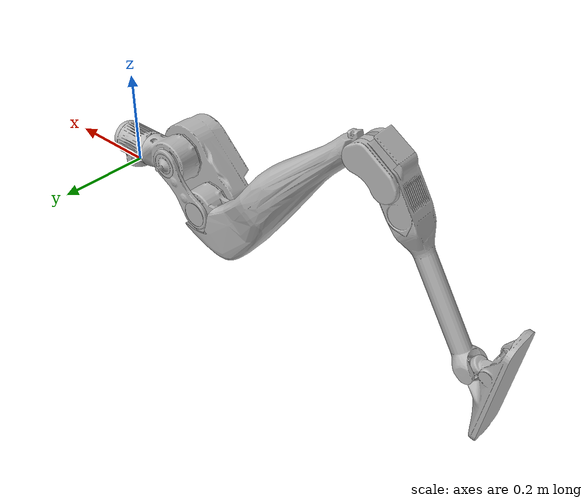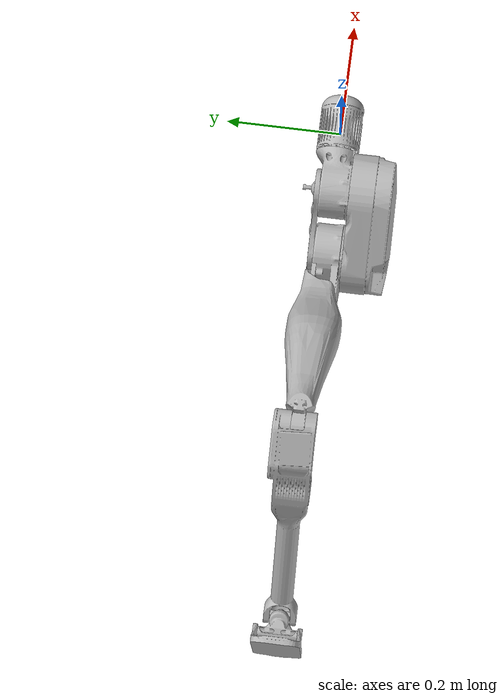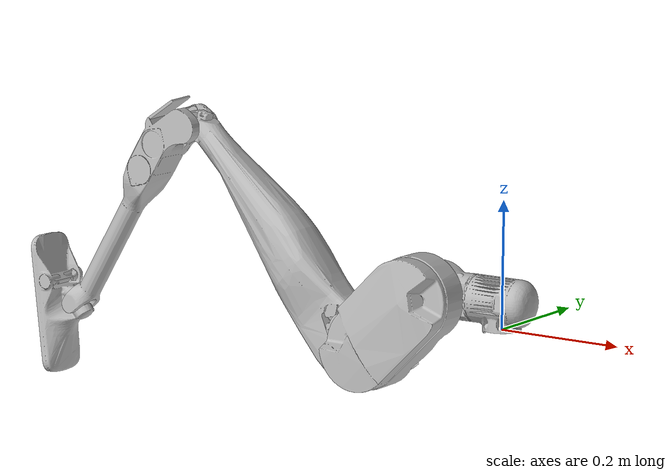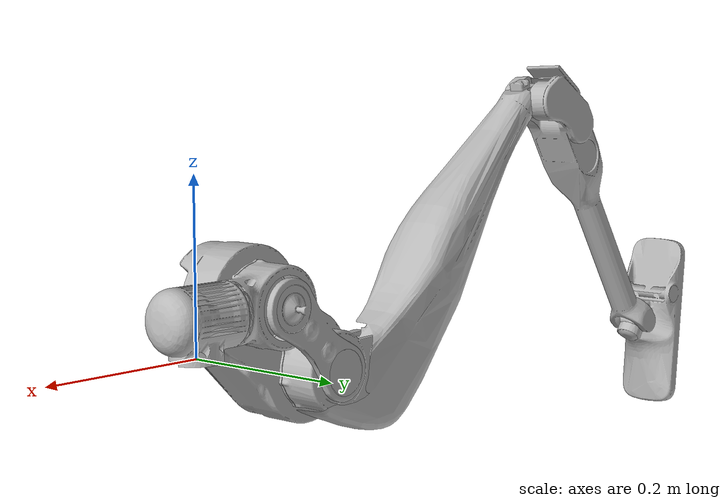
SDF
<?xml version='1.0'?>
<sdf version="1.9">
<model name="digit_right_leg">
<link name="right_hip_roll">
    <pose>0 0 0 0 0 0</pose>
    <inertial>
        <pose>-0.001967 -0.000244 0.031435 0 0 0</pose>
        <mass>0.915088</mass>
        <inertia>
        <ixx>0.001017</ixx>
        <iyy>0.001148</iyy>
        <izz>0.000766</izz>
        <ixy>3e-06</ixy>
        <ixz>1.3e-05</ixz>
        <iyz>4e-06</iyz>
        </inertia>
    </inertial>
    <visual name="right_hip_roll_visual">
        <pose>0 0 0 0 0 0</pose>
        <geometry>
        <mesh>
            <uri>package://digit_sdf_model/visual/hip-yaw-housing-mirror.obj</uri>
        </mesh>
        </geometry>
    </visual>
    <collision name="right_hip_roll_collision_0000">
        <pose>0 0 0 0 0 0</pose>
        <geometry>
          <mesh>
            <uri>package://digit_sdf_model/collision/hip-yaw-housing_parts/hip-yaw-housing_convex_piece_000.obj</uri>
          </mesh>
        </geometry>
      </collision>
      <collision name="right_hip_roll_collision_0001">
        <pose>0 0 0 0 0 0</pose>
        <geometry>
          <mesh>
            <uri>package://digit_sdf_model/collision/hip-yaw-housing_parts/hip-yaw-housing_convex_piece_001.obj</uri>
          </mesh>
        </geometry>
    </collision>
</link>
<link name="right_hip_yaw">
    <pose>0 0 0 0 0 0 </pose>
    <inertial>
        <pose>1e-05 0.001945 0.042033 0 0 0</pose>
        <mass>0.818753</mass>
        <inertia>
        <ixx>0.001627</ixx>
        <iyy>0.001929</iyy>
        <izz>0.00077</izz>
        <ixy>1e-06</ixy>
        <ixz>2e-06</ixz>
        <iyz>-5.3e-05</iyz>
        </inertia>
    </inertial>
    <visual name="right_hip_yaw_visual">
        <pose relative_to="right_hip_yaw_joint">0 0 0 0 0 0</pose>
        <geometry>
        <mesh>
            <uri>package://digit_sdf_model/visual/hip-pitch-housing-mirror.obj</uri>
        </mesh>
        </geometry>
    </visual>
</link>
<link name="right_hip_pitch">
    <pose relative_to="right_hip_pitch_joint">0 0 0 0 -1.57 0</pose>
    <inertial>
        <pose>0.060537 -0.000521 -0.038857 0 0 0</pose>
        <mass>6.244279</mass>
        <inertia>
        <ixx>0.011533</ixx>
        <iyy>0.033345</iyy>
        <izz>0.033958</izz>
        <ixy>0.000171</ixy>
        <ixz>0.000148</ixz>
        <iyz>-0.000178</iyz>
        </inertia>
    </inertial>
    <visual name="right_hip_pitch_visual">
        <pose relative_to="right_hip_pitch_joint">0 0 0 0 0 0</pose>
        <geometry>
        <mesh>
            <uri>package://digit_sdf_model/visual/hip-pitch-mirror.obj</uri>
        </mesh>
        </geometry>
    </visual>
    <collision name="right_hip_pitch_collision_0000">
        <pose relative_to="right_hip_pitch_joint">0 0 0 0 0 0</pose>
        <geometry>
          <mesh>
            <uri>package://digit_sdf_model/collision/hip-pitch-mirror_parts/hip-pitch-mirror_convex_piece_000.obj</uri>
          </mesh>
        </geometry>
    </collision>
    <collision name="right_hip_pitch_collision_0001">
        <pose relative_to="right_hip_pitch_joint">0 0 0 0 0 0</pose>
        <geometry>
          <mesh>
            <uri>package://digit_sdf_model/collision/hip-pitch-mirror_parts/hip-pitch-mirror_convex_piece_001.obj</uri>
          </mesh>
        </geometry>
    </collision>
    <collision name="right_hip_pitch_collision_0002">
        <pose relative_to="right_hip_pitch_joint">0 0 0 0 0 0</pose>
        <geometry>
          <mesh>
            <uri>package://digit_sdf_model/collision/hip-pitch-mirror_parts/hip-pitch-mirror_convex_piece_002.obj</uri>
          </mesh>
        </geometry>
    </collision>
    <collision name="right_hip_pitch_collision_0003">
        <pose relative_to="right_hip_pitch_joint">0 0 0 0 0 0</pose>
        <geometry>
          <mesh>
            <uri>package://digit_sdf_model/collision/hip-pitch-mirror_parts/hip-pitch-mirror_convex_piece_003.obj</uri>
          </mesh>
        </geometry>
    </collision>
</link>
<link name="right_knee">
    <pose relative_to="right_knee_joint">0 0 0 0 -1.57 0</pose>
    <inertial>
        <pose>0.045641 -0.042154 0.001657 0 0 0</pose>
        <mass>1.227077</mass>
        <inertia>
        <ixx>0.002643</ixx>
        <iyy>0.005098</iyy>
        <izz>0.007019</izz>
        <ixy>0.001832</ixy>
        <ixz>6.6e-05</ixz>
        <iyz>-4.5e-05</iyz>
        </inertia>
    </inertial>
    <visual name="right_knee_visual">
        <pose relative_to="right_knee_joint">0 0 0 0 0 0</pose>
        <geometry>
        <mesh>
            <uri>package://digit_sdf_model/visual/knee-mirror.obj</uri>
        </mesh>
        </geometry>
    </visual>
</link>
<link name="right_shin">
    <pose relative_to="right_knee_to_shin_joint">0 0 0 0 -1.57 0</pose>
    <inertial>
        <pose>0.174265 -0.010265 0.00107 0 0 0</pose>
        <mass>0.895793</mass>
        <inertia>
        <ixx>0.001128</ixx>
        <iyy>0.022492</iyy>
        <izz>0.022793</izz>
        <ixy>-0.001098</ixy>
        <ixz>0.000196</ixz>
        <iyz>3e-06</iyz>
        </inertia>
    </inertial>
    <visual name="right_shin_visual">
        <pose relative_to="right_knee_to_shin_joint">0 0 0 0 0 0</pose>
        <geometry>
        <mesh>
            <uri>package://digit_sdf_model/visual/shin-mirror.obj</uri>
        </mesh>
        </geometry>
    </visual>
    <collision name="right_shin_geom_1">
        <pose relative_to="right_knee_to_shin_joint">0.23 0 0 0 1.5708 0</pose>
        <geometry>
            <cylinder>
                <radius>0.03</radius>
                <length>0.343</length>
            </cylinder>
        </geometry>
    </collision>
    <collision name="right_shin_geom_2">
        <pose relative_to="right_knee_to_shin_joint">0.125 -0.009 0 -1.5708 1.466 0</pose>
        <geometry>
            <cylinder>
                <radius>0.05</radius>
                <length>0.2</length>
            </cylinder>
        </geometry>
    </collision>
</link>
<link name="right_tarsus">
    <pose relative_to="right_shin_to_tarsus_joint">0 0 0 0 -1.57 0</pose>
    <inertial>
        <pose>0.100777 0.029183 0.000678 0 0 0</pose>
        <mass>1.322865</mass>
        <inertia>
        <ixx>0.000932</ixx>
        <iyy>0.016409</iyy>
        <izz>0.016501</izz>
        <ixy>-0.00061</ixy>
        <ixz>0.000102</ixz>
        <iyz>-9e-06</iyz>
        </inertia>
    </inertial>
    <visual name="right_tarsus_visual">
        <pose relative_to="right_shin_to_tarsus_joint">0 0 0 0 0 0</pose>
        <geometry>
        <mesh>
            <uri>package://digit_sdf_model/visual/tarsus-mirror.obj</uri>
        </mesh>
        </geometry>
    </visual>
    <collision name="right_tarsus_collision_000">
        <pose relative_to="right_shin_to_tarsus_joint">0 0 0 3.14 0 0</pose>
        <geometry>
          <mesh>
            <uri>package://digit_sdf_model/collision/tarsus_parts/tarsus_convex_piece_000.obj</uri>
          </mesh>
        </geometry>
    </collision>
    <collision name="right_tarsus_collison_001">
        <pose relative_to="right_shin_to_tarsus_joint">0 0 0 3.14 0 0</pose>
        <geometry>
          <mesh>
            <uri>package://digit_sdf_model/collision/tarsus_parts/tarsus_convex_piece_001.obj</uri>
          </mesh>
        </geometry>
    </collision>
    <collision name="right_tarsus_collision_002">
        <pose relative_to="right_shin_to_tarsus_joint">0 0 0 3.14 0 0</pose>
        <geometry>
          <mesh>
            <uri>package://digit_sdf_model/collision/tarsus_parts/tarsus_convex_piece_002.obj</uri>
          </mesh>
        </geometry>
    </collision>
    <collision name="right_tarsus_collision_003">
        <pose relative_to="right_shin_to_tarsus_joint">0 0 0 3.14 0 0</pose>
        <geometry>
          <mesh>
            <uri>package://digit_sdf_model/collision/tarsus_parts/tarsus_convex_piece_003.obj</uri>
          </mesh>
        </geometry>
    </collision>
</link>
<link name="right_toe_pitch">
    <pose relative_to="right_toe_pitch_joint">0 0 0 0 -1.57 0</pose>
    <inertial>
        <pose>-0.000141 -2e-06 3e-06 0 0 0</pose>
        <mass>0.043881</mass>
        <inertia>
        <ixx>5e-06</ixx>
        <iyy>8e-06</iyy>
        <izz>4e-06</izz>
        <ixy>0</ixy>
        <ixz>0</ixz>
        <iyz>0</iyz>
        </inertia>
    </inertial>
    <visual name="right_toe_pitch_visual">
        <pose relative_to="right_toe_pitch_joint">0 0 0 0 0 0</pose>
        <geometry>
        <mesh>
            <uri>package://digit_sdf_model/visual/toe-pitch-mirror.obj</uri>
        </mesh>
        </geometry>
    </visual>
</link>
<link name="right_toe_roll">
    <pose relative_to="right_toe_roll_joint">0 0 0 0 -1.57 0</pose>
    <inertial>
        <pose>9e-06 0.028084 -0.023204 0 0 0</pose>
        <mass>0.531283</mass>
        <inertia>
        <ixx>0.00187</ixx>
        <iyy>0.001616</iyy>
        <izz>0.000843</izz>
        <ixy>0</ixy>
        <ixz>0</ixz>
        <iyz>-0.000566</iyz>
        </inertia>
    </inertial>
    <visual name="right_toe_roll_visual">
        <pose relative_to="right_toe_roll_joint">0 0 0 0 0 0</pose>
        <geometry>
        <mesh>
            <uri>package://digit_sdf_model/visual/toe-roll-mirror.obj</uri>
        </mesh>
        </geometry>
    </visual>
    <collision name="right_toe_geom_1">
        <pose relative_to="right_toe_roll_joint">0 0.0437 -0.0255 1.0472 0 0</pose>
        <geometry>
            <box>
                <size>0.08 0.235 0.023</size>
            </box>
        </geometry>
    </collision>
</link>
<joint name="right_hip_yaw_joint" type="continuous">
    <pose>-0.0505 0 0.044 0 -1.57 0</pose>
    <axis>
        <xyz>0 0 1</xyz>
        <limit>
            <lower>-0.698132</lower>
            <upper>0.698132</upper>
            <effort>1.4</effort>
            <velocity>10</velocity>
        </limit>
    </axis>
    <parent>right_hip_roll</parent>
    <child>right_hip_yaw</child>
</joint>
<joint name="right_hip_pitch_joint" type="continuous">
    <pose relative_to="right_hip_yaw_joint">0 -0.004 0.068 1.57079632679 -0.785398163397 -3.14159265359</pose>
    <axis>
        <xyz>0 0 -1</xyz>
        <limit>
            <lower>-1.0472</lower>
            <upper>1.5708</upper>
            <effort>12.5</effort>
            <velocity>10</velocity>
        </limit>
    </axis>
    <parent>right_hip_yaw</parent>
    <child>right_hip_pitch</child>
</joint>
<joint name="right_knee_joint" type="continuous">
    <pose relative_to="right_hip_pitch_joint">0.12 0 0.0045 0 0 1.57079632679</pose>
    <axis>
        <xyz>0 0 1</xyz>
        <limit>
            <lower>-1.39626</lower>
            <upper>1.019272</upper>
            <effort>1.4</effort>
            <velocity>10</velocity>
        </limit>
    </axis>
    <parent>right_hip_pitch</parent>
    <child>right_knee</child>
</joint>
<joint name="right_knee_to_shin_joint" type="fixed">
    <pose relative_to="right_knee_joint">0.060677 -0.047406 0 0 0 0</pose>
    <axis>
        <xyz>0 0 1</xyz>
        <limit>
            <lower>-0.35</lower>
            <upper>0.35</upper>
            <effort>0</effort>
            <velocity>10</velocity>
        </limit>
        <dynamics>
            <damping>0.1</damping>
        </dynamics>
    </axis>
    <parent>right_knee</parent>
    <child>right_shin</child>
</joint>
<joint name="right_shin_to_tarsus_joint" type="continuous">
    <pose relative_to="right_knee_to_shin_joint">0.434759 -0.02 0 0 0 -1.79769</pose>
    <axis>
        <xyz>0 0 1</xyz>
        <limit>
            <lower>-1.2497</lower>
            <upper>0.8779</upper>
            <effort>0</effort>
            <velocity>20</velocity>
        </limit>
    </axis>
    <parent>right_shin</parent>
    <child>right_tarsus</child>
</joint>
<joint name="right_toe_pitch_joint" type="continuous">
    <pose relative_to="right_shin_to_tarsus_joint">0.408 0.04 0 0 0 -1.1956</pose>
    <axis>
        <xyz>0 0 1</xyz>
        <limit>
            <lower>-0.785398163397</lower>
            <upper>0.785398163397</upper>
            <effort>0.9</effort>
            <velocity>11.5</velocity>
        </limit>
    </axis>
    <parent>right_tarsus</parent>
    <child>right_toe_pitch</child>
</joint>
<joint name="right_toe_roll_joint" type="continuous">
    <pose relative_to="right_toe_pitch_joint">0 0 0 0 1.5708 0</pose>
    <axis>
        <xyz>0 0 1</xyz>
        <limit>
            <lower>-0.6109</lower>
            <upper>0.6109</upper>
            <effort>0.9</effort>
            <velocity>11.5</velocity>
        </limit>
    </axis>
    <parent>right_toe_pitch</parent>
    <child>right_toe_roll</child>
</joint>
</model>
</sdf>
